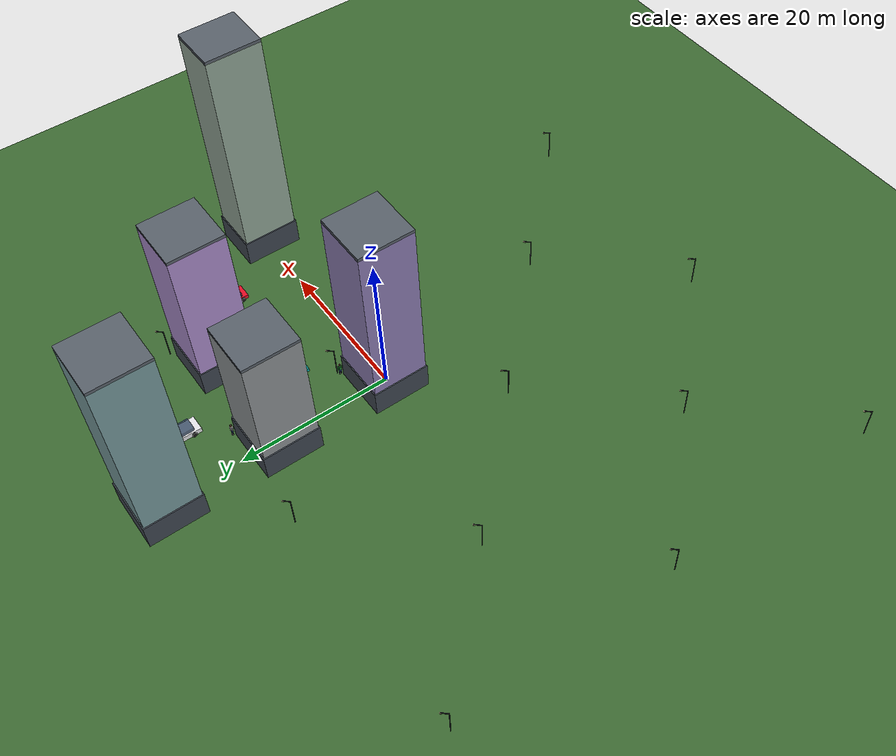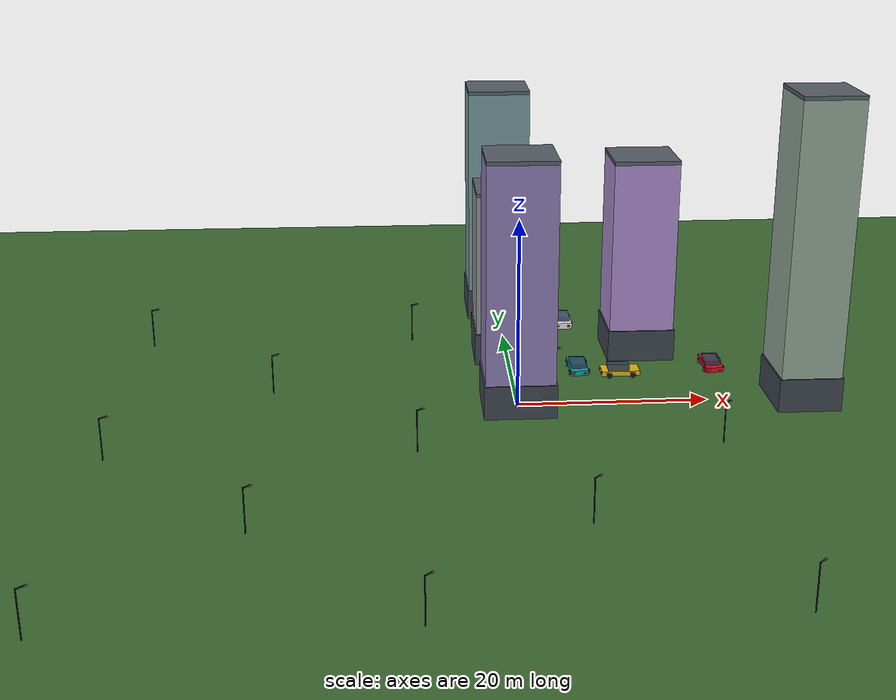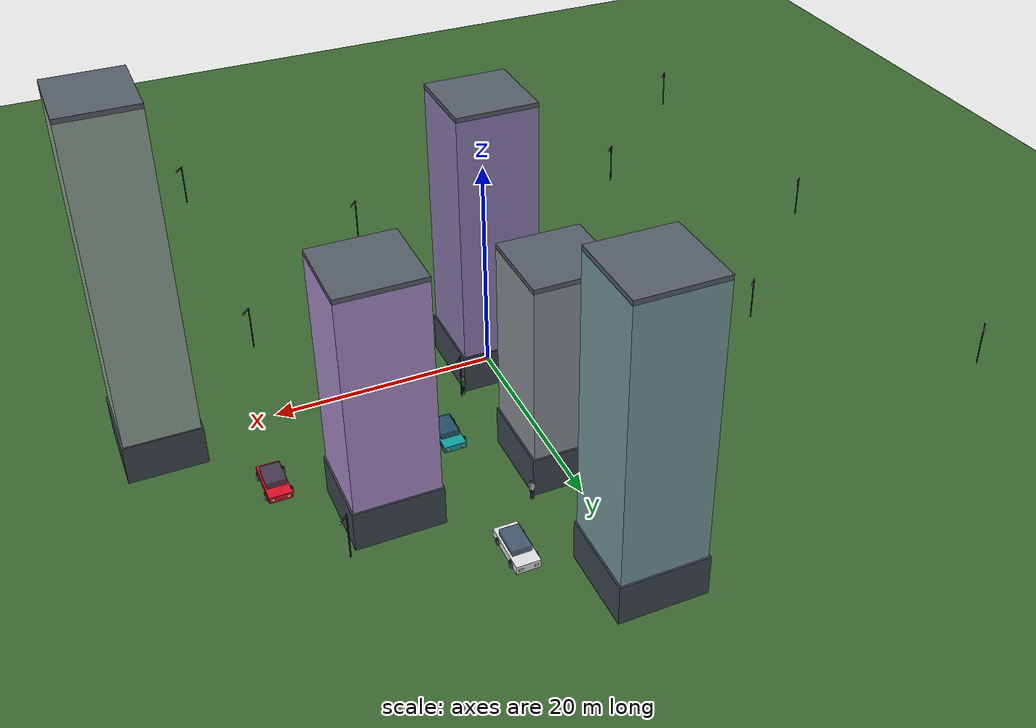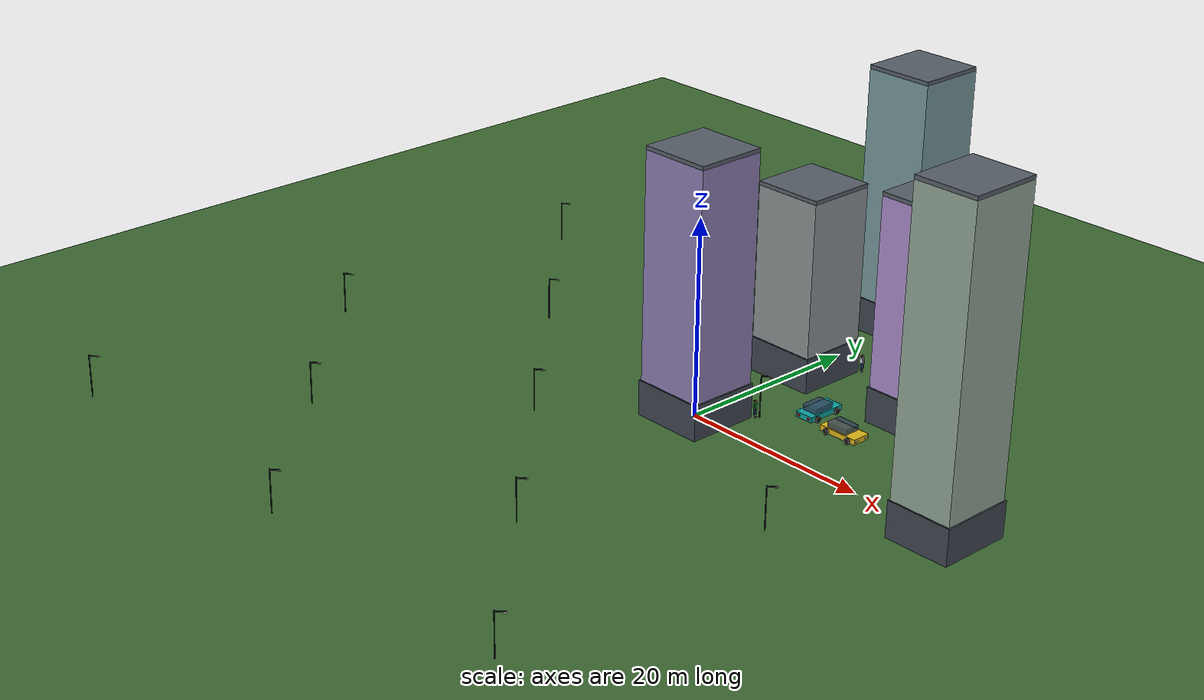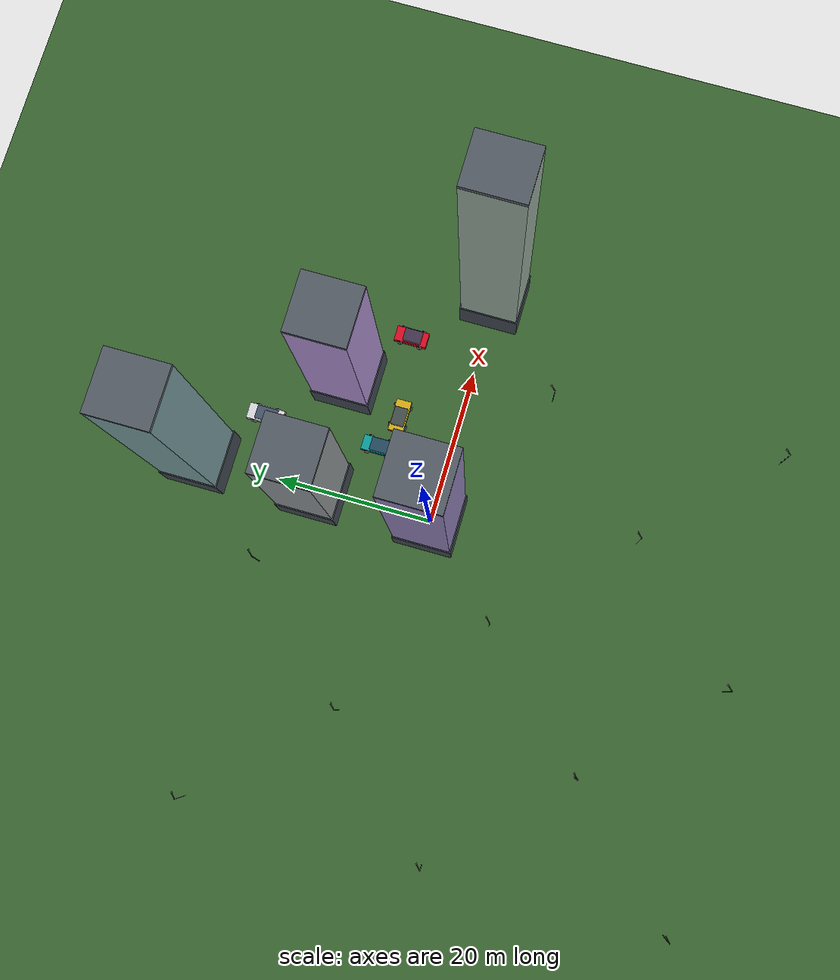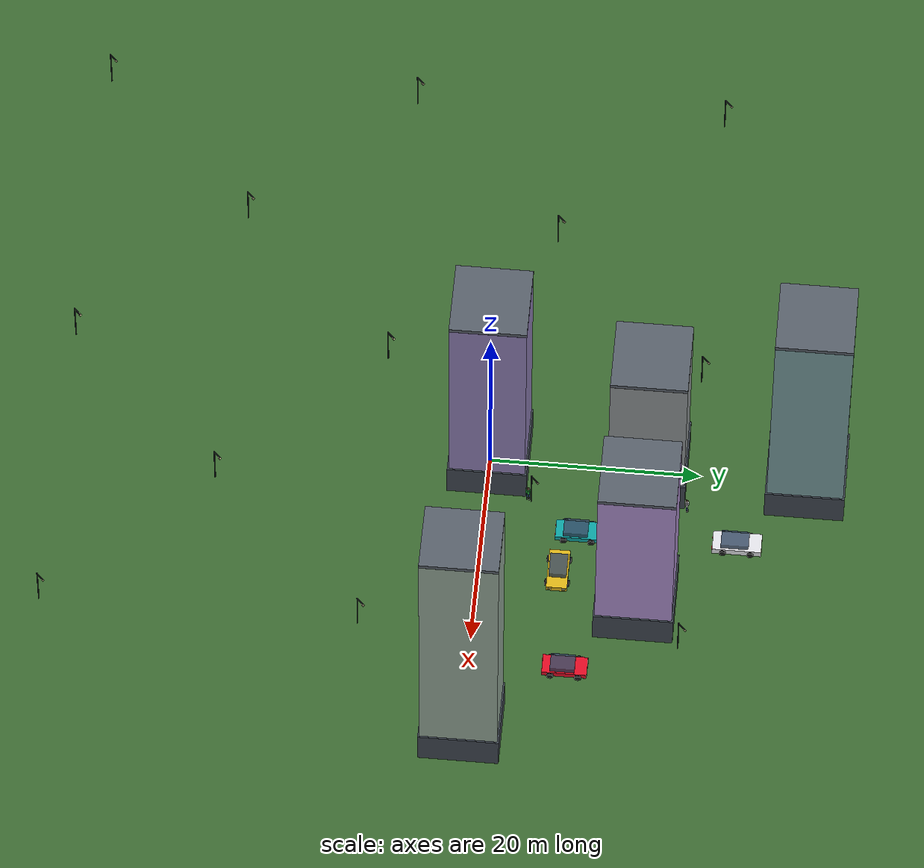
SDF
<sdf version="1.7">
 <world name="city_world">
  <model name="ground_plane">
   <static>true</static>
   <link name="link">
    <collision name="collision">
     <geometry><plane><normal>0 0 1</normal><size>300 300</size></plane></geometry>
     <surface><friction><ode><mu>100</mu><mu2>50</mu2></ode></friction></surface>
    </collision>
    <visual name="visual">
     <geometry><plane><normal>0 0 1</normal><size>300 300</size></plane></geometry>
     <material><ambient>0.24 0.42 0.20 1</ambient><diffuse>0.24 0.42 0.20 1</diffuse></material>
    </visual>
   </link>
  </model>
  <model name="city_streetlamps">
   <static>true</static>
   <link name="link">
    <visual name="lamp_post_0">
     <pose>-40.70 -40.70 2.24 0 0 0.785</pose>
     <geometry><cylinder><radius>0.05</radius><length>4.4</length></cylinder></geometry>
     <material><ambient>0.2 0.22 0.24 1</ambient><diffuse>0.2 0.22 0.24 1</diffuse></material>
    </visual>
    <visual name="lamp_arm_0">
     <pose>-40.38 -40.38 4.35 0 0 0.785</pose>
     <geometry><box><size>0.9 0.08 0.08</size></box></geometry>
     <material><ambient>0.2 0.22 0.24 1</ambient><diffuse>0.2 0.22 0.24 1</diffuse></material>
    </visual>
    <visual name="lamp_fix_0">
     <pose>-40.10 -40.10 4.28 0 0 0.785</pose>
     <geometry><box><size>0.3 0.16 0.08</size></box></geometry>
     <material>
      <ambient>1.0 0.95 0.75 1</ambient>
      <diffuse>1.0 0.95 0.75 1</diffuse>
      <emissive>1.0 0.95 0.75 1</emissive>
     </material>
    </visual>
    <visual name="lamp_post_2">
     <pose>-40.70 -10.70 2.24 0 0 0.785</pose>
     <geometry><cylinder><radius>0.05</radius><length>4.4</length></cylinder></geometry>
     <material><ambient>0.2 0.22 0.24 1</ambient><diffuse>0.2 0.22 0.24 1</diffuse></material>
    </visual>
    <visual name="lamp_arm_2">
     <pose>-40.38 -10.38 4.35 0 0 0.785</pose>
     <geometry><box><size>0.9 0.08 0.08</size></box></geometry>
     <material><ambient>0.2 0.22 0.24 1</ambient><diffuse>0.2 0.22 0.24 1</diffuse></material>
    </visual>
    <visual name="lamp_fix_2">
     <pose>-40.10 -10.10 4.28 0 0 0.785</pose>
     <geometry><box><size>0.3 0.16 0.08</size></box></geometry>
     <material>
      <ambient>1.0 0.95 0.75 1</ambient>
      <diffuse>1.0 0.95 0.75 1</diffuse>
      <emissive>1.0 0.95 0.75 1</emissive>
     </material>
    </visual>
    <visual name="lamp_post_4">
     <pose>-40.70 19.30 2.24 0 0 0.785</pose>
     <geometry><cylinder><radius>0.05</radius><length>4.4</length></cylinder></geometry>
     <material><ambient>0.2 0.22 0.24 1</ambient><diffuse>0.2 0.22 0.24 1</diffuse></material>
    </visual>
    <visual name="lamp_arm_4">
     <pose>-40.38 19.62 4.35 0 0 0.785</pose>
     <geometry><box><size>0.9 0.08 0.08</size></box></geometry>
     <material><ambient>0.2 0.22 0.24 1</ambient><diffuse>0.2 0.22 0.24 1</diffuse></material>
    </visual>
    <visual name="lamp_fix_4">
     <pose>-40.10 19.90 4.28 0 0 0.785</pose>
     <geometry><box><size>0.3 0.16 0.08</size></box></geometry>
     <material>
      <ambient>1.0 0.95 0.75 1</ambient>
      <diffuse>1.0 0.95 0.75 1</diffuse>
      <emissive>1.0 0.95 0.75 1</emissive>
     </material>
    </visual>
    <visual name="lamp_post_6">
     <pose>-25.70 -25.70 2.24 0 0 0.785</pose>
     <geometry><cylinder><radius>0.05</radius><length>4.4</length></cylinder></geometry>
     <material><ambient>0.2 0.22 0.24 1</ambient><diffuse>0.2 0.22 0.24 1</diffuse></material>
    </visual>
    <visual name="lamp_arm_6">
     <pose>-25.38 -25.38 4.35 0 0 0.785</pose>
     <geometry><box><size>0.9 0.08 0.08</size></box></geometry>
     <material><ambient>0.2 0.22 0.24 1</ambient><diffuse>0.2 0.22 0.24 1</diffuse></material>
    </visual>
    <visual name="lamp_fix_6">
     <pose>-25.10 -25.10 4.28 0 0 0.785</pose>
     <geometry><box><size>0.3 0.16 0.08</size></box></geometry>
     <material>
      <ambient>1.0 0.95 0.75 1</ambient>
      <diffuse>1.0 0.95 0.75 1</diffuse>
      <emissive>1.0 0.95 0.75 1</emissive>
     </material>
    </visual>
    <visual name="lamp_post_8">
     <pose>-25.70 4.30 2.24 0 0 0.785</pose>
     <geometry><cylinder><radius>0.05</radius><length>4.4</length></cylinder></geometry>
     <material><ambient>0.2 0.22 0.24 1</ambient><diffuse>0.2 0.22 0.24 1</diffuse></material>
    </visual>
    <visual name="lamp_arm_8">
     <pose>-25.38 4.62 4.35 0 0 0.785</pose>
     <geometry><box><size>0.9 0.08 0.08</size></box></geometry>
     <material><ambient>0.2 0.22 0.24 1</ambient><diffuse>0.2 0.22 0.24 1</diffuse></material>
    </visual>
    <visual name="lamp_fix_8">
     <pose>-25.10 4.90 4.28 0 0 0.785</pose>
     <geometry><box><size>0.3 0.16 0.08</size></box></geometry>
     <material>
      <ambient>1.0 0.95 0.75 1</ambient>
      <diffuse>1.0 0.95 0.75 1</diffuse>
      <emissive>1.0 0.95 0.75 1</emissive>
     </material>
    </visual>
    <visual name="lamp_post_10">
     <pose>-10.70 -40.70 2.24 0 0 0.785</pose>
     <geometry><cylinder><radius>0.05</radius><length>4.4</length></cylinder></geometry>
     <material><ambient>0.2 0.22 0.24 1</ambient><diffuse>0.2 0.22 0.24 1</diffuse></material>
    </visual>
    <visual name="lamp_arm_10">
     <pose>-10.38 -40.38 4.35 0 0 0.785</pose>
     <geometry><box><size>0.9 0.08 0.08</size></box></geometry>
     <material><ambient>0.2 0.22 0.24 1</ambient><diffuse>0.2 0.22 0.24 1</diffuse></material>
    </visual>
    <visual name="lamp_fix_10">
     <pose>-10.10 -40.10 4.28 0 0 0.785</pose>
     <geometry><box><size>0.3 0.16 0.08</size></box></geometry>
     <material>
      <ambient>1.0 0.95 0.75 1</ambient>
      <diffuse>1.0 0.95 0.75 1</diffuse>
      <emissive>1.0 0.95 0.75 1</emissive>
     </material>
    </visual>
    <visual name="lamp_post_12">
     <pose>-10.70 -10.70 2.24 0 0 0.785</pose>
     <geometry><cylinder><radius>0.05</radius><length>4.4</length></cylinder></geometry>
     <material><ambient>0.2 0.22 0.24 1</ambient><diffuse>0.2 0.22 0.24 1</diffuse></material>
    </visual>
    <visual name="lamp_arm_12">
     <pose>-10.38 -10.38 4.35 0 0 0.785</pose>
     <geometry><box><size>0.9 0.08 0.08</size></box></geometry>
     <material><ambient>0.2 0.22 0.24 1</ambient><diffuse>0.2 0.22 0.24 1</diffuse></material>
    </visual>
    <visual name="lamp_fix_12">
     <pose>-10.10 -10.10 4.28 0 0 0.785</pose>
     <geometry><box><size>0.3 0.16 0.08</size></box></geometry>
     <material>
      <ambient>1.0 0.95 0.75 1</ambient>
      <diffuse>1.0 0.95 0.75 1</diffuse>
      <emissive>1.0 0.95 0.75 1</emissive>
     </material>
    </visual>
    <visual name="lamp_post_14">
     <pose>-10.70 19.30 2.24 0 0 0.785</pose>
     <geometry><cylinder><radius>0.05</radius><length>4.4</length></cylinder></geometry>
     <material><ambient>0.2 0.22 0.24 1</ambient><diffuse>0.2 0.22 0.24 1</diffuse></material>
    </visual>
    <visual name="lamp_arm_14">
     <pose>-10.38 19.62 4.35 0 0 0.785</pose>
     <geometry><box><size>0.9 0.08 0.08</size></box></geometry>
     <material><ambient>0.2 0.22 0.24 1</ambient><diffuse>0.2 0.22 0.24 1</diffuse></material>
    </visual>
    <visual name="lamp_fix_14">
     <pose>-10.10 19.90 4.28 0 0 0.785</pose>
     <geometry><box><size>0.3 0.16 0.08</size></box></geometry>
     <material>
      <ambient>1.0 0.95 0.75 1</ambient>
      <diffuse>1.0 0.95 0.75 1</diffuse>
      <emissive>1.0 0.95 0.75 1</emissive>
     </material>
    </visual>
    <visual name="lamp_post_16">
     <pose>4.30 -25.70 2.24 0 0 0.785</pose>
     <geometry><cylinder><radius>0.05</radius><length>4.4</length></cylinder></geometry>
     <material><ambient>0.2 0.22 0.24 1</ambient><diffuse>0.2 0.22 0.24 1</diffuse></material>
    </visual>
    <visual name="lamp_arm_16">
     <pose>4.62 -25.38 4.35 0 0 0.785</pose>
     <geometry><box><size>0.9 0.08 0.08</size></box></geometry>
     <material><ambient>0.2 0.22 0.24 1</ambient><diffuse>0.2 0.22 0.24 1</diffuse></material>
    </visual>
    <visual name="lamp_fix_16">
     <pose>4.90 -25.10 4.28 0 0 0.785</pose>
     <geometry><box><size>0.3 0.16 0.08</size></box></geometry>
     <material>
      <ambient>1.0 0.95 0.75 1</ambient>
      <diffuse>1.0 0.95 0.75 1</diffuse>
      <emissive>1.0 0.95 0.75 1</emissive>
     </material>
    </visual>
    <visual name="lamp_post_18">
     <pose>4.30 4.30 2.24 0 0 0.785</pose>
     <geometry><cylinder><radius>0.05</radius><length>4.4</length></cylinder></geometry>
     <material><ambient>0.2 0.22 0.24 1</ambient><diffuse>0.2 0.22 0.24 1</diffuse></material>
    </visual>
    <visual name="lamp_arm_18">
     <pose>4.62 4.62 4.35 0 0 0.785</pose>
     <geometry><box><size>0.9 0.08 0.08</size></box></geometry>
     <material><ambient>0.2 0.22 0.24 1</ambient><diffuse>0.2 0.22 0.24 1</diffuse></material>
    </visual>
    <visual name="lamp_fix_18">
     <pose>4.90 4.90 4.28 0 0 0.785</pose>
     <geometry><box><size>0.3 0.16 0.08</size></box></geometry>
     <material>
      <ambient>1.0 0.95 0.75 1</ambient>
      <diffuse>1.0 0.95 0.75 1</diffuse>
      <emissive>1.0 0.95 0.75 1</emissive>
     </material>
    </visual>
    <visual name="lamp_post_20">
     <pose>19.30 -40.70 2.24 0 0 0.785</pose>
     <geometry><cylinder><radius>0.05</radius><length>4.4</length></cylinder></geometry>
     <material><ambient>0.2 0.22 0.24 1</ambient><diffuse>0.2 0.22 0.24 1</diffuse></material>
    </visual>
    <visual name="lamp_arm_20">
     <pose>19.62 -40.38 4.35 0 0 0.785</pose>
     <geometry><box><size>0.9 0.08 0.08</size></box></geometry>
     <material><ambient>0.2 0.22 0.24 1</ambient><diffuse>0.2 0.22 0.24 1</diffuse></material>
    </visual>
    <visual name="lamp_fix_20">
     <pose>19.90 -40.10 4.28 0 0 0.785</pose>
     <geometry><box><size>0.3 0.16 0.08</size></box></geometry>
     <material>
      <ambient>1.0 0.95 0.75 1</ambient>
      <diffuse>1.0 0.95 0.75 1</diffuse>
      <emissive>1.0 0.95 0.75 1</emissive>
     </material>
    </visual>
    <visual name="lamp_post_22">
     <pose>19.30 -10.70 2.24 0 0 0.785</pose>
     <geometry><cylinder><radius>0.05</radius><length>4.4</length></cylinder></geometry>
     <material><ambient>0.2 0.22 0.24 1</ambient><diffuse>0.2 0.22 0.24 1</diffuse></material>
    </visual>
    <visual name="lamp_arm_22">
     <pose>19.62 -10.38 4.35 0 0 0.785</pose>
     <geometry><box><size>0.9 0.08 0.08</size></box></geometry>
     <material><ambient>0.2 0.22 0.24 1</ambient><diffuse>0.2 0.22 0.24 1</diffuse></material>
    </visual>
    <visual name="lamp_fix_22">
     <pose>19.90 -10.10 4.28 0 0 0.785</pose>
     <geometry><box><size>0.3 0.16 0.08</size></box></geometry>
     <material>
      <ambient>1.0 0.95 0.75 1</ambient>
      <diffuse>1.0 0.95 0.75 1</diffuse>
      <emissive>1.0 0.95 0.75 1</emissive>
     </material>
    </visual>
    <visual name="lamp_post_24">
     <pose>19.30 19.30 2.24 0 0 0.785</pose>
     <geometry><cylinder><radius>0.05</radius><length>4.4</length></cylinder></geometry>
     <material><ambient>0.2 0.22 0.24 1</ambient><diffuse>0.2 0.22 0.24 1</diffuse></material>
    </visual>
    <visual name="lamp_arm_24">
     <pose>19.62 19.62 4.35 0 0 0.785</pose>
     <geometry><box><size>0.9 0.08 0.08</size></box></geometry>
     <material><ambient>0.2 0.22 0.24 1</ambient><diffuse>0.2 0.22 0.24 1</diffuse></material>
    </visual>
    <visual name="lamp_fix_24">
     <pose>19.90 19.90 4.28 0 0 0.785</pose>
     <geometry><box><size>0.3 0.16 0.08</size></box></geometry>
     <material>
      <ambient>1.0 0.95 0.75 1</ambient>
      <diffuse>1.0 0.95 0.75 1</diffuse>
      <emissive>1.0 0.95 0.75 1</emissive>
     </material>
    </visual>
   </link>
  </model>
  <model name="car_8">
   <pose>7.5 9.0 0.01 0 0 1.5708</pose>
   <static>true</static>
   <link name="link">
    <visual name="body">
     <pose>0 0 0.45 0 0 0</pose>
     <geometry><box><size>4.2 1.95 0.55</size></box></geometry>
     <material>
      <ambient>0.05 0.65 0.65 1</ambient>
      <diffuse>0.05 0.65 0.65 1</diffuse>
      <specular>0.5 0.5 0.5 1</specular>
     </material>
    </visual>
    <visual name="cabin">
     <pose>-0.2 0 0.95 0 0 0</pose>
     <geometry><box><size>2.3 1.65 0.65</size></box></geometry>
     <material>
      <ambient>0.22 0.30 0.40 0.85</ambient>
      <diffuse>0.22 0.30 0.40 0.85</diffuse>
      <specular>0.7 0.7 0.7 1</specular>
     </material>
    </visual>
    <visual name="hl_l">
     <pose>2.1 0.65 0.45 0 0 0</pose>
     <geometry><box><size>0.08 0.35 0.18</size></box></geometry>
     <material><ambient>1 1 0.8 1</ambient><diffuse>1 1 0.8 1</diffuse><emissive>1 1 0.8 1</emissive></material>
    </visual>
    <visual name="hl_r">
     <pose>2.1 -0.65 0.45 0 0 0</pose>
     <geometry><box><size>0.08 0.35 0.18</size></box></geometry>
     <material><ambient>1 1 0.8 1</ambient><diffuse>1 1 0.8 1</diffuse><emissive>1 1 0.8 1</emissive></material>
    </visual>
    <visual name="tl_l">
     <pose>-2.1 0.65 0.45 0 0 0</pose>
     <geometry><box><size>0.08 0.35 0.18</size></box></geometry>
     <material>
      <ambient>1 0.1 0.1 1</ambient>
      <diffuse>1 0.1 0.1 1</diffuse>
      <emissive>0.8 0 0 1</emissive>
     </material>
    </visual>
    <visual name="tl_r">
     <pose>-2.1 -0.65 0.45 0 0 0</pose>
     <geometry><box><size>0.08 0.35 0.18</size></box></geometry>
     <material>
      <ambient>1 0.1 0.1 1</ambient>
      <diffuse>1 0.1 0.1 1</diffuse>
      <emissive>0.8 0 0 1</emissive>
     </material>
    </visual>
    <visual name="w_fl">
     <pose>1.3 1.05 0.32 1.5708 0 0</pose>
     <geometry><cylinder><radius>0.32</radius><length>0.22</length></cylinder></geometry>
     <material><ambient>0.1 0.1 0.1 1</ambient><diffuse>0.1 0.1 0.1 1</diffuse></material>
    </visual>
    <visual name="w_fr">
     <pose>1.3 -1.05 0.32 1.5708 0 0</pose>
     <geometry><cylinder><radius>0.32</radius><length>0.22</length></cylinder></geometry>
     <material><ambient>0.1 0.1 0.1 1</ambient><diffuse>0.1 0.1 0.1 1</diffuse></material>
    </visual>
    <visual name="w_bl">
     <pose>-1.3 1.05 0.32 1.5708 0 0</pose>
     <geometry><cylinder><radius>0.32</radius><length>0.22</length></cylinder></geometry>
     <material><ambient>0.1 0.1 0.1 1</ambient><diffuse>0.1 0.1 0.1 1</diffuse></material>
    </visual>
    <visual name="w_br">
     <pose>-1.3 -1.05 0.32 1.5708 0 0</pose>
     <geometry><cylinder><radius>0.32</radius><length>0.22</length></cylinder></geometry>
     <material><ambient>0.1 0.1 0.1 1</ambient><diffuse>0.1 0.1 0.1 1</diffuse></material>
    </visual>
   </link>
  </model>
  <model name="car_9">
   <pose>7.5 24.0 0.01 0 0 1.5708</pose>
   <static>true</static>
   <link name="link">
    <visual name="body">
     <pose>0 0 0.45 0 0 0</pose>
     <geometry><box><size>4.6 2.05 0.7</size></box></geometry>
     <material>
      <ambient>0.90 0.90 0.92 1</ambient>
      <diffuse>0.90 0.90 0.92 1</diffuse>
      <specular>0.5 0.5 0.5 1</specular>
     </material>
    </visual>
    <visual name="cabin">
     <pose>-0.2 0 0.95 0 0 0</pose>
     <geometry><box><size>2.6 1.65 0.75</size></box></geometry>
     <material>
      <ambient>0.22 0.30 0.40 0.85</ambient>
      <diffuse>0.22 0.30 0.40 0.85</diffuse>
      <specular>0.7 0.7 0.7 1</specular>
     </material>
    </visual>
    <visual name="hl_l">
     <pose>2.3 0.65 0.45 0 0 0</pose>
     <geometry><box><size>0.08 0.35 0.18</size></box></geometry>
     <material><ambient>1 1 0.8 1</ambient><diffuse>1 1 0.8 1</diffuse><emissive>1 1 0.8 1</emissive></material>
    </visual>
    <visual name="hl_r">
     <pose>2.3 -0.65 0.45 0 0 0</pose>
     <geometry><box><size>0.08 0.35 0.18</size></box></geometry>
     <material><ambient>1 1 0.8 1</ambient><diffuse>1 1 0.8 1</diffuse><emissive>1 1 0.8 1</emissive></material>
    </visual>
    <visual name="tl_l">
     <pose>-2.3 0.65 0.45 0 0 0</pose>
     <geometry><box><size>0.08 0.35 0.18</size></box></geometry>
     <material>
      <ambient>1 0.1 0.1 1</ambient>
      <diffuse>1 0.1 0.1 1</diffuse>
      <emissive>0.8 0 0 1</emissive>
     </material>
    </visual>
    <visual name="tl_r">
     <pose>-2.3 -0.65 0.45 0 0 0</pose>
     <geometry><box><size>0.08 0.35 0.18</size></box></geometry>
     <material>
      <ambient>1 0.1 0.1 1</ambient>
      <diffuse>1 0.1 0.1 1</diffuse>
      <emissive>0.8 0 0 1</emissive>
     </material>
    </visual>
    <visual name="w_fl">
     <pose>1.3 1.05 0.32 1.5708 0 0</pose>
     <geometry><cylinder><radius>0.32</radius><length>0.22</length></cylinder></geometry>
     <material><ambient>0.1 0.1 0.1 1</ambient><diffuse>0.1 0.1 0.1 1</diffuse></material>
    </visual>
    <visual name="w_fr">
     <pose>1.3 -1.05 0.32 1.5708 0 0</pose>
     <geometry><cylinder><radius>0.32</radius><length>0.22</length></cylinder></geometry>
     <material><ambient>0.1 0.1 0.1 1</ambient><diffuse>0.1 0.1 0.1 1</diffuse></material>
    </visual>
    <visual name="w_bl">
     <pose>-1.3 1.05 0.32 1.5708 0 0</pose>
     <geometry><cylinder><radius>0.32</radius><length>0.22</length></cylinder></geometry>
     <material><ambient>0.1 0.1 0.1 1</ambient><diffuse>0.1 0.1 0.1 1</diffuse></material>
    </visual>
    <visual name="w_br">
     <pose>-1.3 -1.05 0.32 1.5708 0 0</pose>
     <geometry><cylinder><radius>0.32</radius><length>0.22</length></cylinder></geometry>
     <material><ambient>0.1 0.1 0.1 1</ambient><diffuse>0.1 0.1 0.1 1</diffuse></material>
    </visual>
   </link>
  </model>
  <model name="car_12">
   <pose>22.5 9.0 0.01 0 0 1.5708</pose>
   <static>true</static>
   <link name="link">
    <visual name="body">
     <pose>0 0 0.45 0 0 0</pose>
     <geometry><box><size>4.2 1.95 0.55</size></box></geometry>
     <material>
      <ambient>0.90 0.05 0.15 1</ambient>
      <diffuse>0.90 0.05 0.15 1</diffuse>
      <specular>0.5 0.5 0.5 1</specular>
     </material>
    </visual>
    <visual name="cabin">
     <pose>-0.2 0 0.95 0 0 0</pose>
     <geometry><box><size>2.3 1.65 0.65</size></box></geometry>
     <material>
      <ambient>0.22 0.30 0.40 0.85</ambient>
      <diffuse>0.22 0.30 0.40 0.85</diffuse>
      <specular>0.7 0.7 0.7 1</specular>
     </material>
    </visual>
    <visual name="hl_l">
     <pose>2.1 0.65 0.45 0 0 0</pose>
     <geometry><box><size>0.08 0.35 0.18</size></box></geometry>
     <material><ambient>1 1 0.8 1</ambient><diffuse>1 1 0.8 1</diffuse><emissive>1 1 0.8 1</emissive></material>
    </visual>
    <visual name="hl_r">
     <pose>2.1 -0.65 0.45 0 0 0</pose>
     <geometry><box><size>0.08 0.35 0.18</size></box></geometry>
     <material><ambient>1 1 0.8 1</ambient><diffuse>1 1 0.8 1</diffuse><emissive>1 1 0.8 1</emissive></material>
    </visual>
    <visual name="tl_l">
     <pose>-2.1 0.65 0.45 0 0 0</pose>
     <geometry><box><size>0.08 0.35 0.18</size></box></geometry>
     <material>
      <ambient>1 0.1 0.1 1</ambient>
      <diffuse>1 0.1 0.1 1</diffuse>
      <emissive>0.8 0 0 1</emissive>
     </material>
    </visual>
    <visual name="tl_r">
     <pose>-2.1 -0.65 0.45 0 0 0</pose>
     <geometry><box><size>0.08 0.35 0.18</size></box></geometry>
     <material>
      <ambient>1 0.1 0.1 1</ambient>
      <diffuse>1 0.1 0.1 1</diffuse>
      <emissive>0.8 0 0 1</emissive>
     </material>
    </visual>
    <visual name="w_fl">
     <pose>1.3 1.05 0.32 1.5708 0 0</pose>
     <geometry><cylinder><radius>0.32</radius><length>0.22</length></cylinder></geometry>
     <material><ambient>0.1 0.1 0.1 1</ambient><diffuse>0.1 0.1 0.1 1</diffuse></material>
    </visual>
    <visual name="w_fr">
     <pose>1.3 -1.05 0.32 1.5708 0 0</pose>
     <geometry><cylinder><radius>0.32</radius><length>0.22</length></cylinder></geometry>
     <material><ambient>0.1 0.1 0.1 1</ambient><diffuse>0.1 0.1 0.1 1</diffuse></material>
    </visual>
    <visual name="w_bl">
     <pose>-1.3 1.05 0.32 1.5708 0 0</pose>
     <geometry><cylinder><radius>0.32</radius><length>0.22</length></cylinder></geometry>
     <material><ambient>0.1 0.1 0.1 1</ambient><diffuse>0.1 0.1 0.1 1</diffuse></material>
    </visual>
    <visual name="w_br">
     <pose>-1.3 -1.05 0.32 1.5708 0 0</pose>
     <geometry><cylinder><radius>0.32</radius><length>0.22</length></cylinder></geometry>
     <material><ambient>0.1 0.1 0.1 1</ambient><diffuse>0.1 0.1 0.1 1</diffuse></material>
    </visual>
   </link>
  </model>
  <model name="car_17">
   <pose>12.0 7.5 0.01 0 0 0.0000</pose>
   <static>true</static>
   <link name="link">
    <visual name="body">
     <pose>0 0 0.45 0 0 0</pose>
     <geometry><box><size>4.2 1.95 0.55</size></box></geometry>
     <material>
      <ambient>0.88 0.72 0.10 1</ambient>
      <diffuse>0.88 0.72 0.10 1</diffuse>
      <specular>0.5 0.5 0.5 1</specular>
     </material>
    </visual>
    <visual name="cabin">
     <pose>-0.2 0 0.95 0 0 0</pose>
     <geometry><box><size>2.3 1.65 0.65</size></box></geometry>
     <material>
      <ambient>0.22 0.30 0.40 0.85</ambient>
      <diffuse>0.22 0.30 0.40 0.85</diffuse>
      <specular>0.7 0.7 0.7 1</specular>
     </material>
    </visual>
    <visual name="hl_l">
     <pose>2.1 0.65 0.45 0 0 0</pose>
     <geometry><box><size>0.08 0.35 0.18</size></box></geometry>
     <material><ambient>1 1 0.8 1</ambient><diffuse>1 1 0.8 1</diffuse><emissive>1 1 0.8 1</emissive></material>
    </visual>
    <visual name="hl_r">
     <pose>2.1 -0.65 0.45 0 0 0</pose>
     <geometry><box><size>0.08 0.35 0.18</size></box></geometry>
     <material><ambient>1 1 0.8 1</ambient><diffuse>1 1 0.8 1</diffuse><emissive>1 1 0.8 1</emissive></material>
    </visual>
    <visual name="tl_l">
     <pose>-2.1 0.65 0.45 0 0 0</pose>
     <geometry><box><size>0.08 0.35 0.18</size></box></geometry>
     <material>
      <ambient>1 0.1 0.1 1</ambient>
      <diffuse>1 0.1 0.1 1</diffuse>
      <emissive>0.8 0 0 1</emissive>
     </material>
    </visual>
    <visual name="tl_r">
     <pose>-2.1 -0.65 0.45 0 0 0</pose>
     <geometry><box><size>0.08 0.35 0.18</size></box></geometry>
     <material>
      <ambient>1 0.1 0.1 1</ambient>
      <diffuse>1 0.1 0.1 1</diffuse>
      <emissive>0.8 0 0 1</emissive>
     </material>
    </visual>
    <visual name="w_fl">
     <pose>1.3 1.05 0.32 1.5708 0 0</pose>
     <geometry><cylinder><radius>0.32</radius><length>0.22</length></cylinder></geometry>
     <material><ambient>0.1 0.1 0.1 1</ambient><diffuse>0.1 0.1 0.1 1</diffuse></material>
    </visual>
    <visual name="w_fr">
     <pose>1.3 -1.05 0.32 1.5708 0 0</pose>
     <geometry><cylinder><radius>0.32</radius><length>0.22</length></cylinder></geometry>
     <material><ambient>0.1 0.1 0.1 1</ambient><diffuse>0.1 0.1 0.1 1</diffuse></material>
    </visual>
    <visual name="w_bl">
     <pose>-1.3 1.05 0.32 1.5708 0 0</pose>
     <geometry><cylinder><radius>0.32</radius><length>0.22</length></cylinder></geometry>
     <material><ambient>0.1 0.1 0.1 1</ambient><diffuse>0.1 0.1 0.1 1</diffuse></material>
    </visual>
    <visual name="w_br">
     <pose>-1.3 -1.05 0.32 1.5708 0 0</pose>
     <geometry><cylinder><radius>0.32</radius><length>0.22</length></cylinder></geometry>
     <material><ambient>0.1 0.1 0.1 1</ambient><diffuse>0.1 0.1 0.1 1</diffuse></material>
    </visual>
   </link>
  </model>
  <model name="pedestrian_18">
   <pose>4.0 4.0 0.04 0 0 0.0000</pose>
   <static>true</static>
   <link name="link">
    <visual name="head">
     <pose>0 0 1.62 0 0 0</pose>
     <geometry><sphere><radius>0.13</radius></sphere></geometry>
     <material><ambient>0.94 0.80 0.68 1</ambient><diffuse>0.94 0.80 0.68 1</diffuse></material>
    </visual>
    <visual name="cap">
     <pose>0 -0.02 1.70 0 0 0</pose>
     <geometry><box><size>0.24 0.22 0.10</size></box></geometry>
     <material><ambient>0.2 0.15 0.1 1</ambient><diffuse>0.2 0.15 0.1 1</diffuse></material>
    </visual>
    <visual name="torso">
     <pose>0 0 1.20 0 0 0</pose>
     <geometry><box><size>0.34 0.24 0.52</size></box></geometry>
     <material><ambient>0.15 0.68 0.25 1</ambient><diffuse>0.15 0.68 0.25 1</diffuse></material>
    </visual>
    <visual name="arm_l">
     <pose>0 0.20 1.18 0 0 0</pose>
     <geometry><box><size>0.10 0.10 0.48</size></box></geometry>
     <material><ambient>0.15 0.68 0.25 1</ambient><diffuse>0.15 0.68 0.25 1</diffuse></material>
    </visual>
    <visual name="arm_r">
     <pose>0 -0.20 1.18 0 0 0</pose>
     <geometry><box><size>0.10 0.10 0.48</size></box></geometry>
     <material><ambient>0.15 0.68 0.25 1</ambient><diffuse>0.15 0.68 0.25 1</diffuse></material>
    </visual>
    <visual name="leg_l">
     <pose>0 0.09 0.60 0 0 0</pose>
     <geometry><box><size>0.13 0.13 0.62</size></box></geometry>
     <material><ambient>0.15 0.25 0.45 1</ambient><diffuse>0.15 0.25 0.45 1</diffuse></material>
    </visual>
    <visual name="leg_r">
     <pose>0 -0.09 0.60 0 0 0</pose>
     <geometry><box><size>0.13 0.13 0.62</size></box></geometry>
     <material><ambient>0.15 0.25 0.45 1</ambient><diffuse>0.15 0.25 0.45 1</diffuse></material>
    </visual>
    <visual name="shoe_l">
     <pose>0.04 0.09 0.05 0 0 0</pose>
     <geometry><box><size>0.22 0.13 0.08</size></box></geometry>
     <material><ambient>0.1 0.1 0.1 1</ambient><diffuse>0.1 0.1 0.1 1</diffuse></material>
    </visual>
    <visual name="shoe_r">
     <pose>0.04 -0.09 0.05 0 0 0</pose>
     <geometry><box><size>0.22 0.13 0.08</size></box></geometry>
     <material><ambient>0.1 0.1 0.1 1</ambient><diffuse>0.1 0.1 0.1 1</diffuse></material>
    </visual>
   </link>
  </model>
  <model name="pedestrian_21">
   <pose>4.0 19.0 0.04 0 0 1.5708</pose>
   <static>true</static>
   <link name="link">
    <visual name="head">
     <pose>0 0 1.62 0 0 0</pose>
     <geometry><sphere><radius>0.13</radius></sphere></geometry>
     <material><ambient>0.65 0.48 0.28 1</ambient><diffuse>0.65 0.48 0.28 1</diffuse></material>
    </visual>
    <visual name="cap">
     <pose>0 -0.02 1.70 0 0 0</pose>
     <geometry><box><size>0.24 0.22 0.10</size></box></geometry>
     <material><ambient>0.2 0.15 0.1 1</ambient><diffuse>0.2 0.15 0.1 1</diffuse></material>
    </visual>
    <visual name="torso">
     <pose>0 0 1.20 0 0 0</pose>
     <geometry><box><size>0.34 0.24 0.52</size></box></geometry>
     <material><ambient>0.92 0.92 0.94 1</ambient><diffuse>0.92 0.92 0.94 1</diffuse></material>
    </visual>
    <visual name="arm_l">
     <pose>0 0.20 1.18 0 0 0</pose>
     <geometry><box><size>0.10 0.10 0.48</size></box></geometry>
     <material><ambient>0.92 0.92 0.94 1</ambient><diffuse>0.92 0.92 0.94 1</diffuse></material>
    </visual>
    <visual name="arm_r">
     <pose>0 -0.20 1.18 0 0 0</pose>
     <geometry><box><size>0.10 0.10 0.48</size></box></geometry>
     <material><ambient>0.92 0.92 0.94 1</ambient><diffuse>0.92 0.92 0.94 1</diffuse></material>
    </visual>
    <visual name="leg_l">
     <pose>0 0.09 0.60 0 0 0</pose>
     <geometry><box><size>0.13 0.13 0.62</size></box></geometry>
     <material><ambient>0.15 0.25 0.45 1</ambient><diffuse>0.15 0.25 0.45 1</diffuse></material>
    </visual>
    <visual name="leg_r">
     <pose>0 -0.09 0.60 0 0 0</pose>
     <geometry><box><size>0.13 0.13 0.62</size></box></geometry>
     <material><ambient>0.15 0.25 0.45 1</ambient><diffuse>0.15 0.25 0.45 1</diffuse></material>
    </visual>
    <visual name="shoe_l">
     <pose>0.04 0.09 0.05 0 0 0</pose>
     <geometry><box><size>0.22 0.13 0.08</size></box></geometry>
     <material><ambient>0.1 0.1 0.1 1</ambient><diffuse>0.1 0.1 0.1 1</diffuse></material>
    </visual>
    <visual name="shoe_r">
     <pose>0.04 -0.09 0.05 0 0 0</pose>
     <geometry><box><size>0.22 0.13 0.08</size></box></geometry>
     <material><ambient>0.1 0.1 0.1 1</ambient><diffuse>0.1 0.1 0.1 1</diffuse></material>
    </visual>
   </link>
  </model>
  <model name="pedestrian_23">
   <pose>0.0 0.0 0.05 0 0 0.5236</pose>
   <static>true</static>
   <link name="link">
    <visual name="head">
     <pose>0 0 1.62 0 0 0</pose>
     <geometry><sphere><radius>0.13</radius></sphere></geometry>
     <material><ambient>0.50 0.32 0.16 1</ambient><diffuse>0.50 0.32 0.16 1</diffuse></material>
    </visual>
    <visual name="cap">
     <pose>0 -0.02 1.70 0 0 0</pose>
     <geometry><box><size>0.24 0.22 0.10</size></box></geometry>
     <material><ambient>0.2 0.15 0.1 1</ambient><diffuse>0.2 0.15 0.1 1</diffuse></material>
    </visual>
    <visual name="torso">
     <pose>0 0 1.20 0 0 0</pose>
     <geometry><box><size>0.34 0.24 0.52</size></box></geometry>
     <material><ambient>0.92 0.42 0.15 1</ambient><diffuse>0.92 0.42 0.15 1</diffuse></material>
    </visual>
    <visual name="arm_l">
     <pose>0 0.20 1.18 0 0 0</pose>
     <geometry><box><size>0.10 0.10 0.48</size></box></geometry>
     <material><ambient>0.92 0.42 0.15 1</ambient><diffuse>0.92 0.42 0.15 1</diffuse></material>
    </visual>
    <visual name="arm_r">
     <pose>0 -0.20 1.18 0 0 0</pose>
     <geometry><box><size>0.10 0.10 0.48</size></box></geometry>
     <material><ambient>0.92 0.42 0.15 1</ambient><diffuse>0.92 0.42 0.15 1</diffuse></material>
    </visual>
    <visual name="leg_l">
     <pose>0 0.09 0.60 0 0 0</pose>
     <geometry><box><size>0.13 0.13 0.62</size></box></geometry>
     <material><ambient>0.72 0.65 0.52 1</ambient><diffuse>0.72 0.65 0.52 1</diffuse></material>
    </visual>
    <visual name="leg_r">
     <pose>0 -0.09 0.60 0 0 0</pose>
     <geometry><box><size>0.13 0.13 0.62</size></box></geometry>
     <material><ambient>0.72 0.65 0.52 1</ambient><diffuse>0.72 0.65 0.52 1</diffuse></material>
    </visual>
    <visual name="shoe_l">
     <pose>0.04 0.09 0.05 0 0 0</pose>
     <geometry><box><size>0.22 0.13 0.08</size></box></geometry>
     <material><ambient>0.1 0.1 0.1 1</ambient><diffuse>0.1 0.1 0.1 1</diffuse></material>
    </visual>
    <visual name="shoe_r">
     <pose>0.04 -0.09 0.05 0 0 0</pose>
     <geometry><box><size>0.22 0.13 0.08</size></box></geometry>
     <material><ambient>0.1 0.1 0.1 1</ambient><diffuse>0.1 0.1 0.1 1</diffuse></material>
    </visual>
   </link>
  </model>
  <model name="pedestrian_24">
   <pose>15.0 15.0 0.05 0 0 3.4907</pose>
   <static>true</static>
   <link name="link">
    <visual name="head">
     <pose>0 0 1.62 0 0 0</pose>
     <geometry><sphere><radius>0.13</radius></sphere></geometry>
     <material><ambient>0.88 0.72 0.55 1</ambient><diffuse>0.88 0.72 0.55 1</diffuse></material>
    </visual>
    <visual name="cap">
     <pose>0 -0.02 1.70 0 0 0</pose>
     <geometry><box><size>0.24 0.22 0.10</size></box></geometry>
     <material><ambient>0.2 0.15 0.1 1</ambient><diffuse>0.2 0.15 0.1 1</diffuse></material>
    </visual>
    <visual name="torso">
     <pose>0 0 1.20 0 0 0</pose>
     <geometry><box><size>0.34 0.24 0.52</size></box></geometry>
     <material><ambient>0.88 0.15 0.15 1</ambient><diffuse>0.88 0.15 0.15 1</diffuse></material>
    </visual>
    <visual name="arm_l">
     <pose>0 0.20 1.18 0 0 0</pose>
     <geometry><box><size>0.10 0.10 0.48</size></box></geometry>
     <material><ambient>0.88 0.15 0.15 1</ambient><diffuse>0.88 0.15 0.15 1</diffuse></material>
    </visual>
    <visual name="arm_r">
     <pose>0 -0.20 1.18 0 0 0</pose>
     <geometry><box><size>0.10 0.10 0.48</size></box></geometry>
     <material><ambient>0.88 0.15 0.15 1</ambient><diffuse>0.88 0.15 0.15 1</diffuse></material>
    </visual>
    <visual name="leg_l">
     <pose>0 0.09 0.60 0 0 0</pose>
     <geometry><box><size>0.13 0.13 0.62</size></box></geometry>
     <material><ambient>0.15 0.25 0.45 1</ambient><diffuse>0.15 0.25 0.45 1</diffuse></material>
    </visual>
    <visual name="leg_r">
     <pose>0 -0.09 0.60 0 0 0</pose>
     <geometry><box><size>0.13 0.13 0.62</size></box></geometry>
     <material><ambient>0.15 0.25 0.45 1</ambient><diffuse>0.15 0.25 0.45 1</diffuse></material>
    </visual>
    <visual name="shoe_l">
     <pose>0.04 0.09 0.05 0 0 0</pose>
     <geometry><box><size>0.22 0.13 0.08</size></box></geometry>
     <material><ambient>0.1 0.1 0.1 1</ambient><diffuse>0.1 0.1 0.1 1</diffuse></material>
    </visual>
    <visual name="shoe_r">
     <pose>0.04 -0.09 0.05 0 0 0</pose>
     <geometry><box><size>0.22 0.13 0.08</size></box></geometry>
     <material><ambient>0.1 0.1 0.1 1</ambient><diffuse>0.1 0.1 0.1 1</diffuse></material>
    </visual>
   </link>
  </model>
  <model name="building_17">
   <pose>0.0 0.0 13.247053902424158 0 0 0</pose>
   <static>true</static>
   <link name="link">
    <collision name="collision"><geometry><box><size>7.20 7.20 26.49</size></box></geometry></collision>
    <visual name="tower">
     <geometry><box><size>7.20 7.20 26.49</size></box></geometry>
     <material>
      <ambient>0.56 0.50 0.71 1</ambient>
      <diffuse>0.56 0.50 0.71 1</diffuse>
      <specular>0.3 0.3 0.3 1</specular>
     </material>
    </visual>
    <visual name="lobby">
     <pose>0 0 -11.45 0 0 0</pose>
     <geometry><box><size>7.50 7.50 3.6</size></box></geometry>
     <material><ambient>0.25 0.28 0.32 1</ambient><diffuse>0.25 0.28 0.32 1</diffuse></material>
    </visual>
    <visual name="parapet">
     <pose>0 0 13.45 0 0 0</pose>
     <geometry><box><size>7.20 7.20 0.4</size></box></geometry>
     <material><ambient>0.35 0.38 0.42 1</ambient><diffuse>0.35 0.38 0.42 1</diffuse></material>
    </visual>
   </link>
  </model>
  <model name="building_18">
   <pose>0.0 15.0 9.675744369513424 0 0 0</pose>
   <static>true</static>
   <link name="link">
    <collision name="collision"><geometry><box><size>7.20 7.20 19.35</size></box></geometry></collision>
    <visual name="tower">
     <geometry><box><size>7.20 7.20 19.35</size></box></geometry>
     <material>
      <ambient>0.56 0.58 0.59 1</ambient>
      <diffuse>0.56 0.58 0.59 1</diffuse>
      <specular>0.3 0.3 0.3 1</specular>
     </material>
    </visual>
    <visual name="lobby">
     <pose>0 0 -7.88 0 0 0</pose>
     <geometry><box><size>7.50 7.50 3.6</size></box></geometry>
     <material><ambient>0.25 0.28 0.32 1</ambient><diffuse>0.25 0.28 0.32 1</diffuse></material>
    </visual>
    <visual name="parapet">
     <pose>0 0 9.88 0 0 0</pose>
     <geometry><box><size>7.20 7.20 0.4</size></box></geometry>
     <material><ambient>0.35 0.38 0.42 1</ambient><diffuse>0.35 0.38 0.42 1</diffuse></material>
    </visual>
   </link>
  </model>
  <model name="building_19">
   <pose>0.0 30.0 13.8246307768585 0 0 0</pose>
   <static>true</static>
   <link name="link">
    <collision name="collision"><geometry><box><size>7.20 7.20 27.65</size></box></geometry></collision>
    <visual name="tower">
     <geometry><box><size>7.20 7.20 27.65</size></box></geometry>
     <material>
      <ambient>0.47 0.61 0.62 1</ambient>
      <diffuse>0.47 0.61 0.62 1</diffuse>
      <specular>0.3 0.3 0.3 1</specular>
     </material>
    </visual>
    <visual name="lobby">
     <pose>0 0 -12.02 0 0 0</pose>
     <geometry><box><size>7.50 7.50 3.6</size></box></geometry>
     <material><ambient>0.25 0.28 0.32 1</ambient><diffuse>0.25 0.28 0.32 1</diffuse></material>
    </visual>
    <visual name="parapet">
     <pose>0 0 14.02 0 0 0</pose>
     <geometry><box><size>7.20 7.20 0.4</size></box></geometry>
     <material><ambient>0.35 0.38 0.42 1</ambient><diffuse>0.35 0.38 0.42 1</diffuse></material>
    </visual>
   </link>
  </model>
  <model name="building_23">
   <pose>15.0 15.0 11.328224597516062 0 0 0</pose>
   <static>true</static>
   <link name="link">
    <collision name="collision"><geometry><box><size>7.20 7.20 22.66</size></box></geometry></collision>
    <visual name="tower">
     <geometry><box><size>7.20 7.20 22.66</size></box></geometry>
     <material>
      <ambient>0.68 0.56 0.81 1</ambient>
      <diffuse>0.68 0.56 0.81 1</diffuse>
      <specular>0.3 0.3 0.3 1</specular>
     </material>
    </visual>
    <visual name="lobby">
     <pose>0 0 -9.53 0 0 0</pose>
     <geometry><box><size>7.50 7.50 3.6</size></box></geometry>
     <material><ambient>0.25 0.28 0.32 1</ambient><diffuse>0.25 0.28 0.32 1</diffuse></material>
    </visual>
    <visual name="parapet">
     <pose>0 0 11.53 0 0 0</pose>
     <geometry><box><size>7.20 7.20 0.4</size></box></geometry>
     <material><ambient>0.35 0.38 0.42 1</ambient><diffuse>0.35 0.38 0.42 1</diffuse></material>
    </visual>
   </link>
  </model>
  <model name="building_27">
   <pose>30.0 0.0 16.21963340568596 0 0 0</pose>
   <static>true</static>
   <link name="link">
    <collision name="collision"><geometry><box><size>6.34 7.20 32.44</size></box></geometry></collision>
    <visual name="tower">
     <geometry><box><size>6.34 7.20 32.44</size></box></geometry>
     <material>
      <ambient>0.58 0.66 0.60 1</ambient>
      <diffuse>0.58 0.66 0.60 1</diffuse>
      <specular>0.3 0.3 0.3 1</specular>
     </material>
    </visual>
    <visual name="lobby">
     <pose>0 0 -14.42 0 0 0</pose>
     <geometry><box><size>6.64 7.50 3.6</size></box></geometry>
     <material><ambient>0.25 0.28 0.32 1</ambient><diffuse>0.25 0.28 0.32 1</diffuse></material>
    </visual>
    <visual name="parapet">
     <pose>0 0 16.42 0 0 0</pose>
     <geometry><box><size>6.34 7.20 0.4</size></box></geometry>
     <material><ambient>0.35 0.38 0.42 1</ambient><diffuse>0.35 0.38 0.42 1</diffuse></material>
    </visual>
   </link>
  </model>
  <model name="helipad_5">
   <pose>0.0 15.0 19.4515 0 0 0</pose>
   <static>true</static>
   <link name="link">
    <visual name="pad">
     <geometry><cylinder><radius>2.5</radius><length>0.15</length></cylinder></geometry>
     <material><ambient>1.0 0.82 0.0 1</ambient><diffuse>1.0 0.82 0.0 1</diffuse></material>
    </visual>
    <visual name="ring">
     <pose>0 0 0.02 0 0 0</pose>
     <geometry><cylinder><radius>2.3</radius><length>0.12</length></cylinder></geometry>
     <material><ambient>0.2 0.2 0.2 1</ambient><diffuse>0.2 0.2 0.2 1</diffuse></material>
    </visual>
    <visual name="inner_pad">
     <pose>0 0 0.04 0 0 0</pose>
     <geometry><cylinder><radius>2.0</radius><length>0.10</length></cylinder></geometry>
     <material><ambient>1.0 0.82 0.0 1</ambient><diffuse>1.0 0.82 0.0 1</diffuse></material>
    </visual>
    <visual name="h_bar1">
     <pose>-0.75 0 0.10 0 0 0</pose>
     <geometry><box><size>0.35 1.8 0.02</size></box></geometry>
     <material><ambient>1 1 1 1</ambient><diffuse>1 1 1 1</diffuse></material>
    </visual>
    <visual name="h_bar2">
     <pose>0.75 0 0.10 0 0 0</pose>
     <geometry><box><size>0.35 1.8 0.02</size></box></geometry>
     <material><ambient>1 1 1 1</ambient><diffuse>1 1 1 1</diffuse></material>
    </visual>
    <visual name="h_cross">
     <pose>0 0 0.10 0 0 0</pose>
     <geometry><box><size>1.5 0.35 0.02</size></box></geometry>
     <material><ambient>1 1 1 1</ambient><diffuse>1 1 1 1</diffuse></material>
    </visual>
   </link>
  </model>
 </world>
</sdf>
